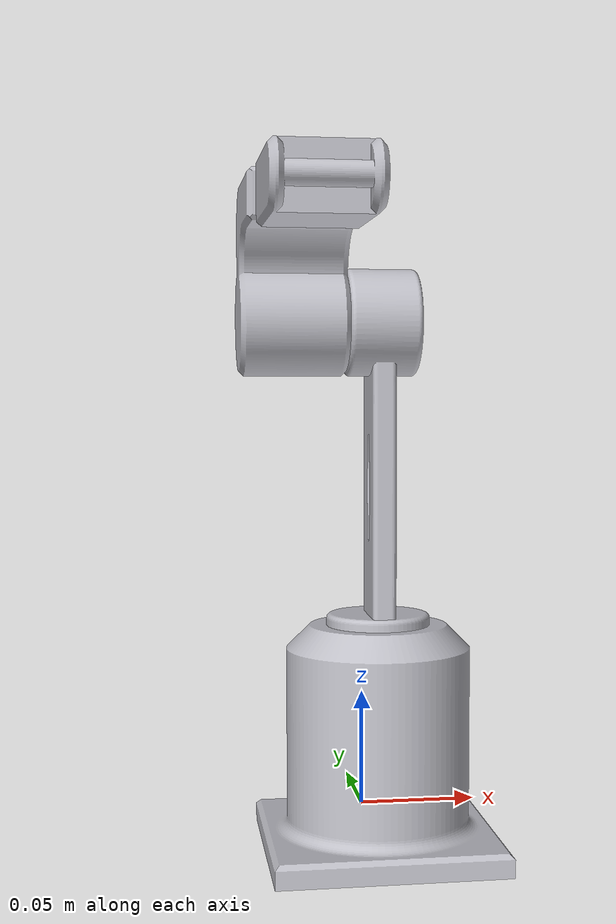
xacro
<?xml version="1.0" ?>
<robot name="Robotic" xmlns:xacro="http://www.ros.org/wiki/xacro">

<xacro:include filename="$(find Robotic_description)/urdf/materials.xacro" />
<xacro:include filename="$(find Robotic_description)/urdf/Robotic.trans" />
<xacro:include filename="$(find Robotic_description)/urdf/Robotic.gazebo" />
<link name="base_link">
  <inertial>
    <origin xyz="0.006536167375728557 -0.003893892459322812 0.025264938655354285" rpy="0 0 0"/>
    <mass value="4.250514906118769"/>
    <inertia ixx="0.00579" iyy="0.00579" izz="0.004025" ixy="-0.0" iyz="-0.0" ixz="-0.0"/>
  </inertial>
  <visual>
    <origin xyz="0 0 0" rpy="0 0 0"/>
    <geometry>
      <mesh filename="package://Robotic_description/meshes/base_link.stl" scale="0.001 0.001 0.001"/>
    </geometry>
    <material name="silver"/>
  </visual>
  <collision>
    <origin xyz="0 0 0" rpy="0 0 0"/>
    <geometry>
      <mesh filename="package://Robotic_description/meshes/base_link.stl" scale="0.001 0.001 0.001"/>
    </geometry>
  </collision>
</link>

<link name="link1_1">
  <inertial>
    <origin xyz="5.918366090028847e-05 -0.004529794987167393 0.09296840107696949" rpy="0 0 0"/>
    <mass value="0.6563313677813545"/>
    <inertia ixx="0.001642" iyy="0.001605" izz="0.000111" ixy="0.0" iyz="2.8e-05" ixz="-1e-06"/>
  </inertial>
  <visual>
    <origin xyz="-0.006536 0.003894 -0.08043" rpy="0 0 0"/>
    <geometry>
      <mesh filename="package://Robotic_description/meshes/link1_1.stl" scale="0.001 0.001 0.001"/>
    </geometry>
    <material name="silver"/>
  </visual>
  <collision>
    <origin xyz="-0.006536 0.003894 -0.08043" rpy="0 0 0"/>
    <geometry>
      <mesh filename="package://Robotic_description/meshes/link1_1.stl" scale="0.001 0.001 0.001"/>
    </geometry>
  </collision>
</link>

<link name="link2_1">
  <inertial>
    <origin xyz="-0.027485224069093317 -0.0117051563262722 0.02106427962224003" rpy="0 0 0"/>
    <mass value="1.0398716426562593"/>
    <inertia ixx="0.001005" iyy="0.000774" izz="0.000598" ixy="-0.0" iyz="0.000295" ixz="0.0"/>
  </inertial>
  <visual>
    <origin xyz="0.003464 0.008894 -0.21043" rpy="0 0 0"/>
    <geometry>
      <mesh filename="package://Robotic_description/meshes/link2_1.stl" scale="0.001 0.001 0.001"/>
    </geometry>
    <material name="silver"/>
  </visual>
  <collision>
    <origin xyz="0.003464 0.008894 -0.21043" rpy="0 0 0"/>
    <geometry>
      <mesh filename="package://Robotic_description/meshes/link2_1.stl" scale="0.001 0.001 0.001"/>
    </geometry>
  </collision>
</link>

<link name="link3_1">
  <inertial>
    <origin xyz="-1.4552678614748737e-05 -0.03350582657861226 -0.00023970299406883555" rpy="0 0 0"/>
    <mass value="0.4764022269324293"/>
    <inertia ixx="0.000183" iyy="8.5e-05" izz="0.000224" ixy="0.0" iyz="-0.0" ixz="-0.0"/>
  </inertial>
  <visual>
    <origin xyz="0.030964 0.069987 -0.255072" rpy="0 0 0"/>
    <geometry>
      <mesh filename="package://Robotic_description/meshes/link3_1.stl" scale="0.001 0.001 0.001"/>
    </geometry>
    <material name="silver"/>
  </visual>
  <collision>
    <origin xyz="0.030964 0.069987 -0.255072" rpy="0 0 0"/>
    <geometry>
      <mesh filename="package://Robotic_description/meshes/link3_1.stl" scale="0.001 0.001 0.001"/>
    </geometry>
  </collision>
</link>

<joint name="Revolute 5" type="continuous">
  <origin xyz="0.006536 -0.003894 0.08043" rpy="0 0 0"/>
  <parent link="base_link"/>
  <child link="link1_1"/>
  <axis xyz="0.0 -0.0 1.0"/>
</joint>

<joint name="Revolute 6" type="continuous">
  <origin xyz="-0.01 -0.005 0.13" rpy="0 0 0"/>
  <parent link="link1_1"/>
  <child link="link2_1"/>
  <axis xyz="-1.0 -0.0 0.0"/>
</joint>

<joint name="Revolute 7" type="continuous">
  <origin xyz="-0.0275 -0.061093 0.044642" rpy="0 0 0"/>
  <parent link="link2_1"/>
  <child link="link3_1"/>
  <axis xyz="-0.0 1.0 -0.0"/>
</joint>

</robot>
